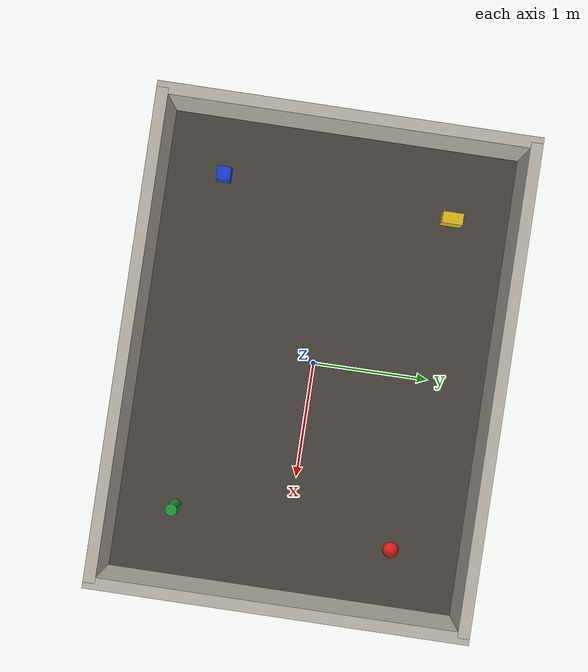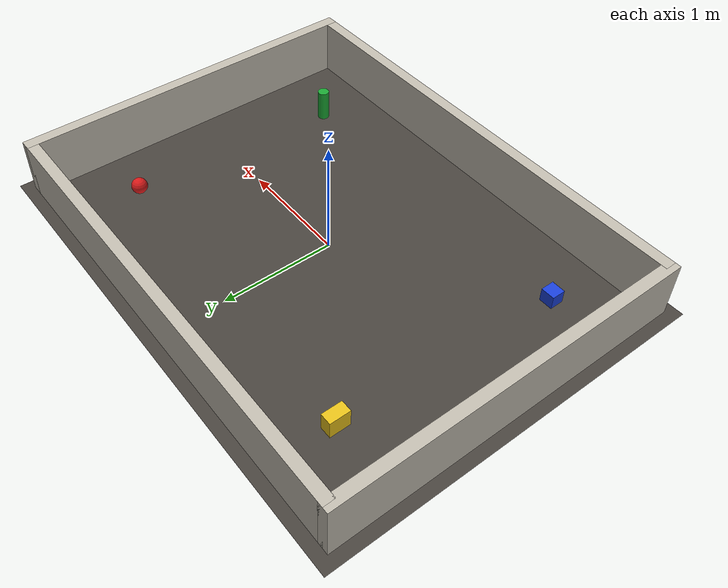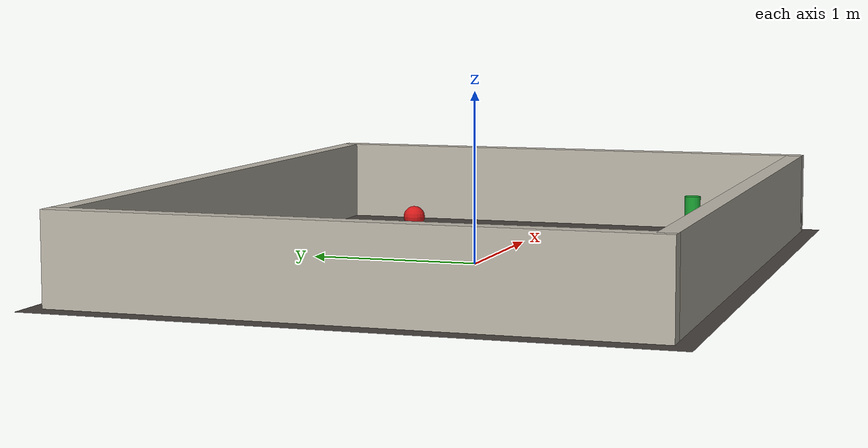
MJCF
<mujoco model="microduck_room">
  <visual>
    <headlight diffuse="0.7 0.7 0.7" ambient="0.35 0.35 0.35" specular="0 0 0"/>
    <global azimuth="150" elevation="-25"/>
  </visual>

  <asset>
    <texture type="skybox" builtin="gradient" rgb1="0.4 0.55 0.7" rgb2="0.05 0.05 0.1"
             width="512" height="3072"/>
    <texture type="2d" name="floortex" builtin="checker" mark="edge" rgb1="0.32 0.3 0.28"
             rgb2="0.24 0.22 0.2" markrgb="0.5 0.5 0.5" width="300" height="300"/>
    <material name="floormat" texture="floortex" texuniform="true" texrepeat="8 8"
              reflectance="0.15"/>
    <material name="wallmat" rgba="0.75 0.73 0.68 1"/>
  </asset>

  <worldbody>
    <light pos="0 0 2.5" dir="0 0 -1" directional="true"/>

    <geom name="floor" type="plane" size="2.2 1.7 0.05" material="floormat" group="0"/>

    <geom name="wall_north" type="box" size="2.05 0.05 0.25" pos="0 1.55 0.25"
          material="wallmat" group="0"/>
    <geom name="wall_south" type="box" size="2.05 0.05 0.25" pos="0 -1.55 0.25"
          material="wallmat" group="0"/>
    <geom name="wall_east" type="box" size="0.05 1.6 0.25" pos="2.05 0 0.25"
          material="wallmat" group="0"/>
    <geom name="wall_west" type="box" size="0.05 1.6 0.25" pos="-2.05 0 0.25"
          material="wallmat" group="0"/>

    <geom name="red_ball" type="sphere" size="0.07" pos="1.5 0.9 0.07"
          rgba="0.85 0.1 0.1 1" group="0"/>
    <geom name="blue_cube" type="box" size="0.06 0.06 0.06" pos="-1.5 -1.0 0.06"
          rgba="0.1 0.25 0.85 1" group="0"/>
    <geom name="green_pillar" type="cylinder" size="0.05 0.14" pos="1.4 -1.0 0.14"
          rgba="0.1 0.65 0.2 1" group="0"/>
    <geom name="yellow_block" type="box" size="0.05 0.09 0.08" pos="-1.4 1.0 0.08"
          rgba="0.9 0.75 0.1 1" group="0"/>
  </worldbody>
</mujoco>
